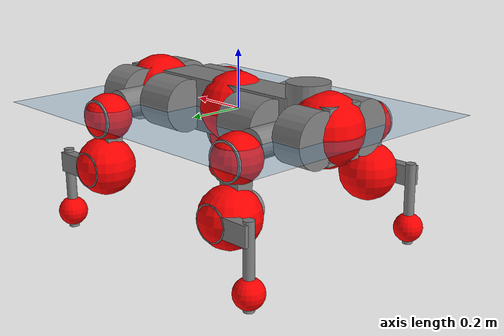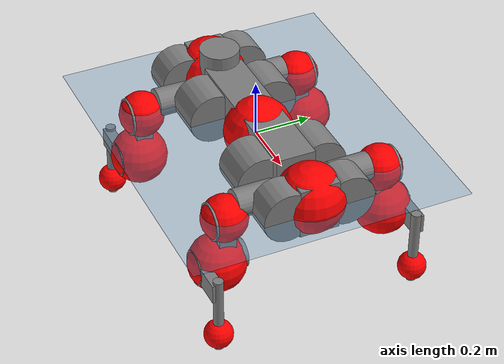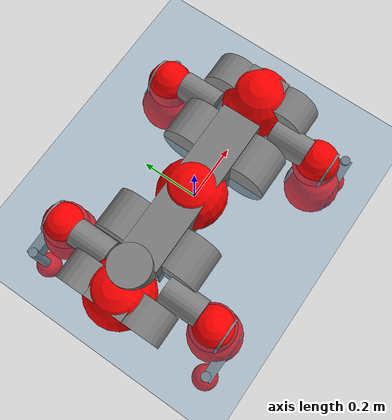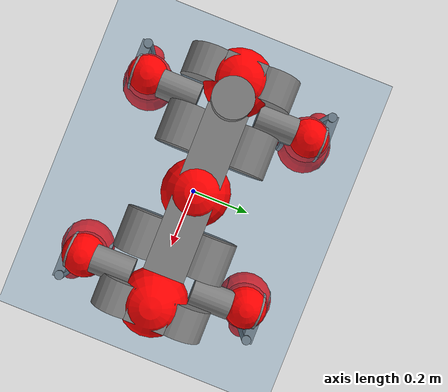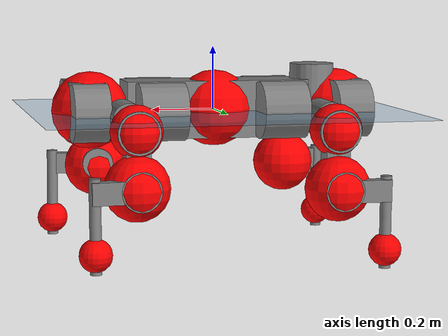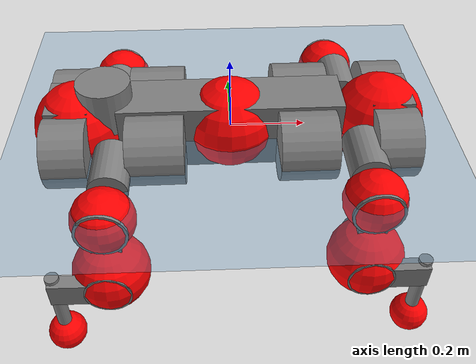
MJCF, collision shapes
<mujoco model="anymal_c">
  <compiler angle="radian" assetdir="assets" balanceinertia="true" inertiafromgeom="false"/>

  <option timestep="0.005" density="1.2" viscosity="2e-05"/>

  <size nkey="1"/>

  <visual>
    <quality shadowsize="8192"/>
    <map shadowclip="0.5"/>
  </visual>

  <default>
    <default class="/">
      <material specular="0" shininess="0.25"/>
      <geom contype="0" conaffinity="0" group="1" solref="-1000 -80"/>
      <site size="0.01 0.005 0.005" group="5"/>
      <general forcelimited="true" forcerange="-80 80" biastype="affine" gainprm="80" biasprm="0 -80 -2"/>
      <default class="anymal_c">
        <joint armature="0.01" damping="0.01" frictionloss="0.1"/>
        <default class="visual">
          <geom type="mesh" group="2"/>
          <default class="visual_zflip"/>
        </default>
        <default class="collision">
          <geom type="cylinder" group="3"/>
          <default class="foot">
            <geom size="0.03 0 0" type="sphere" condim="6" priority="1" friction="0.8 0.02 0.01" solimp="0.015 1 0.03"/>
          </default>
        </default>
      </default>
      <default class="reward_collision_sphere">
        <geom group="5" rgba="1 0 0 1"/>
      </default>
    </default>
  </default>

  <asset>
    <texture type="skybox" colorspace="auto" name="//unnamed_texture_0" builtin="gradient" rgb1="0.95 0.95 0.95" rgb2="0.95 0.95 0.95" width="100" height="600"/>
    <texture type="2d" colorspace="auto" name="texplane" builtin="checker" rgb1="0.345 0.575 0.748" rgb2="0.345 0.575 0.748" markrgb="1 1 1" width="512" height="512"/>
    <texture type="2d" colorspace="linear" name="base" file="base.png"/>
    <texture type="2d" colorspace="linear" name="top_shell" file="top_shell.png"/>
    <texture type="2d" colorspace="linear" name="bottom_shell" file="bottom_shell.png"/>
    <texture type="2d" colorspace="linear" name="remote" file="remote.png"/>
    <texture type="2d" colorspace="linear" name="hatch" file="hatch.png"/>
    <texture type="2d" colorspace="linear" name="handle" file="handle.png"/>
    <texture type="2d" colorspace="linear" name="face" file="face.png"/>
    <texture type="2d" colorspace="linear" name="battery" file="battery.png"/>
    <texture type="2d" colorspace="linear" name="lidar_cage" file="lidar_cage.png"/>
    <texture type="2d" colorspace="linear" name="depth_camera" file="depth_camera.png"/>
    <texture type="2d" colorspace="linear" name="wide_angle_camera" file="wide_angle_camera.png"/>
    <texture type="2d" colorspace="linear" name="lidar" file="lidar.png"/>
    <texture type="2d" colorspace="linear" name="drive" file="drive.png"/>
    <texture type="2d" colorspace="linear" name="hip_l" file="hip_l.png"/>
    <texture type="2d" colorspace="linear" name="shank_l" file="shank_l.png"/>
    <texture type="2d" colorspace="linear" name="foot" file="foot.png"/>
    <texture type="2d" colorspace="linear" name="thigh" file="thigh.png"/>
    <texture type="2d" colorspace="linear" name="shank_r" file="shank_r.png"/>
    <texture type="2d" colorspace="linear" name="hip_r" file="hip_r.png"/>
    <material name="MatPlane" class="/" texture="texplane" texuniform="true" texrepeat="2 2" specular="0.9" shininess="0.5"/>
    <material name="black_plastic" class="/" rgba="0.007 0.007 0.007 1"/>
    <material name="green" class="/" rgba="0.052 0.178 0.033 1"/>
    <material name="red" class="/" rgba="0.178 0.006 0.005 1"/>
    <material name="yellow" class="/" rgba="0.178 0.119 0.006 1"/>
    <material name="lwl" class="/" rgba="0.8 0.8 0.8 1"/>
    <material name="base" class="/" texture="base"/>
    <material name="top_shell" class="/" texture="top_shell"/>
    <material name="bottom_shell" class="/" texture="bottom_shell"/>
    <material name="hip_l" class="/" texture="hip_l"/>
    <material name="thigh" class="/" texture="thigh"/>
    <material name="shank_l" class="/" texture="shank_l"/>
    <material name="foot" class="/" texture="foot"/>
    <material name="hip_r" class="/" texture="hip_r"/>
    <material name="shank" class="/" texture="shank_r"/>
    <material name="hatch" class="/" texture="hatch"/>
    <material name="remote" class="/" texture="remote"/>
    <material name="handle" class="/" texture="handle"/>
    <material name="face" class="/" texture="face"/>
    <material name="depth_camera" class="/" texture="depth_camera"/>
    <material name="wide_angle_camera" class="/" texture="wide_angle_camera"/>
    <material name="battery" class="/" texture="battery"/>
    <material name="lidar_cage" class="/" texture="lidar_cage"/>
    <material name="lidar" class="/" texture="lidar"/>
    <material name="drive" class="/" texture="drive"/>
    <mesh name="base_0" class="/" file="base_0.obj"/>
    <mesh name="base_1" class="/" file="base_1.obj"/>
    <mesh name="base_2" class="/" file="base_2.obj"/>
    <mesh name="base_3" class="/" file="base_3.obj"/>
    <mesh name="base_4" class="/" file="base_4.obj"/>
    <mesh name="base_5" class="/" file="base_5.obj"/>
    <mesh name="top_shell" class="/" file="top_shell.obj"/>
    <mesh name="bottom_shell" class="/" file="bottom_shell.obj"/>
    <mesh name="remote" class="/" file="remote.obj"/>
    <mesh name="handle" class="/" file="handle.obj"/>
    <mesh name="face" class="/" file="face.obj"/>
    <mesh name="wide_angle_camera" class="/" file="wide_angle_camera.obj"/>
    <mesh name="depth_camera" class="/" file="depth_camera.obj"/>
    <mesh name="battery" class="/" file="battery.obj"/>
    <mesh name="lidar_cage" class="/" file="lidar_cage.obj"/>
    <mesh name="lidar" class="/" file="lidar.obj"/>
    <mesh name="drive" class="/" file="drive.obj"/>
    <mesh name="hip_l" class="/" file="hip_l.obj"/>
    <mesh name="thigh" class="/" file="thigh.obj"/>
    <mesh name="shank_l" class="/" file="shank_l.obj"/>
    <mesh name="foot" class="/" file="foot.obj"/>
    <mesh name="hip_r" class="/" file="hip_r.obj"/>
    <mesh name="hatch" class="/" file="hatch.obj"/>
    <mesh name="shank_r" class="/" file="shank_r.obj"/>
  </asset>

  <worldbody>
    <geom name="floor" class="/" size="100 100 0.125" type="plane" group="0" material="MatPlane"/>
    <light name="toplight_shadow" class="/" pos="0 0 5" dir="0.0990148 0.0990148 -0.990148" type="directional" ambient="0.04 0.04 0.04" diffuse="0.55 0.55 0.55" specular="0.12 0.12 0.12"/>
    <light name="toplight_fill" class="/" pos="0 0 5" dir="0.0990148 0.0990148 -0.990148" type="directional" castshadow="false" ambient="0.04 0.04 0.04" diffuse="0.3 0.3 0.3" specular="0.08 0.08 0.08"/>
    <body name="trunk" childclass="anymal_c" pos="-0.000263478 0.00961262 0.00510487" quat="0.999988 -0.00365217 -0.00112098 0.00296688">
      <inertial pos="0.0104642 0.0145624 0.0189144" quat="0.514552 0.497862 0.46688 0.51903" mass="20.4385" diaginertia="0.511022 6.55404 0.0153805"/>
      <joint name="//unnamed_joint_0" type="free" armature="0" damping="0" frictionloss="0"/>
      <geom name="//unnamed_geom_1" class="visual" material="green" mesh="base_0"/>
      <geom name="//unnamed_geom_2" class="visual" material="yellow" mesh="base_1"/>
      <geom name="//unnamed_geom_3" class="visual" material="red" mesh="base_2"/>
      <geom name="//unnamed_geom_4" class="visual" material="black_plastic" mesh="base_3"/>
      <geom name="//unnamed_geom_5" class="visual" material="lwl" mesh="base_4"/>
      <geom name="//unnamed_geom_6" class="visual" material="base" mesh="base_5"/>
      <geom name="trunk_1" class="collision" size="0.294315 0.0710416 0.0913392" type="box"/>
      <geom name="trunk_2" class="collision" size="0.0913392 0.0735788" pos="0.194638 0.10933 0" quat="0.707107 0 0.707107 0"/>
      <geom name="trunk_3" class="collision" size="0.0913392 0.0735788" pos="-0.194638 0.10933 0" quat="0.707107 0 0.707107 0"/>
      <geom name="trunk_4" class="collision" size="0.0913392 0.0735788" pos="0.194638 -0.10933 0" quat="0.707107 0 0.707107 0"/>
      <geom name="trunk_5" class="collision" size="0.0913392 0.0735788" pos="-0.194638 -0.10933 0" quat="0.707107 0 0.707107 0"/>
      <geom name="//unnamed_geom_12" class="visual" material="top_shell" mesh="top_shell"/>
      <geom name="//unnamed_geom_13" class="visual" material="bottom_shell" mesh="bottom_shell"/>
      <geom name="//unnamed_geom_14" class="visual" material="remote" mesh="remote"/>
      <geom name="//unnamed_geom_15" class="visual" material="handle" mesh="handle"/>
      <geom name="//unnamed_geom_16" class="visual" pos="0.37093 0 0" quat="1 0 0 0" material="face" mesh="face"/>
      <geom name="trunk_6" class="collision" size="0.0558184 0.0710416 0.0913392" pos="0.420149 0 0" type="box"/>
      <geom name="//unnamed_geom_18" class="collision" size="0.0913392 0.0558184" pos="0.420149 0.10933 0" quat="0.707107 0 0.707107 0"/>
      <geom name="//unnamed_geom_19" class="collision" size="0.0913392 0.0558184" pos="0.420149 -0.10933 0" quat="0.707107 0 0.707107 0"/>
      <geom name="//unnamed_geom_20" class="visual" pos="0.413111 0 -0.0148335" quat="0.965926 0 0.258819 0" material="depth_camera" mesh="depth_camera"/>
      <geom name="//unnamed_geom_21" class="visual" pos="0.459076 0 0.00880083" material="wide_angle_camera" mesh="wide_angle_camera"/>
      <geom name="//unnamed_geom_22" class="visual_zflip" pos="-0.37093 0 0" quat="0 0 0 1" material="face" mesh="face"/>
      <geom name="trunk_7" class="collision" size="0.0558184 0.0710416 0.0913392" pos="-0.420149 0 0" quat="0 0 0 1" type="box"/>
      <geom name="//unnamed_geom_24" class="collision" size="0.0913392 0.0558184" pos="-0.420149 -0.10933 0" quat="0 -0.707107 0 0.707107"/>
      <geom name="//unnamed_geom_25" class="collision" size="0.0913392 0.0558184" pos="-0.420149 0.10933 0" quat="0 -0.707107 0 0.707107"/>
      <geom name="//unnamed_geom_26" class="visual" pos="-0.413111 0 -0.0148335" quat="0 -0.258819 0 0.965926" material="depth_camera" mesh="depth_camera"/>
      <geom name="//unnamed_geom_27" class="visual_zflip" pos="-0.459076 0 0.00880083" quat="0 0 0 1" material="wide_angle_camera" mesh="wide_angle_camera"/>
      <geom name="//unnamed_geom_28" class="visual" material="battery" mesh="battery"/>
      <geom name="//unnamed_geom_29" class="visual" pos="0 0.128159 0.0194115" quat="0.683013 -0.183013 0.183013 0.683013" material="depth_camera" mesh="depth_camera"/>
      <geom name="//unnamed_geom_30" class="visual" pos="0 -0.128159 0.0194115" quat="0.683013 0.183013 0.183013 -0.683013" material="depth_camera" mesh="depth_camera"/>
      <geom name="//unnamed_geom_31" class="visual" pos="-0.325738 0 0.0432105" quat="1 0 0 0" material="lidar_cage" mesh="lidar_cage"/>
      <geom name="trunk_8" class="collision" size="0.0710416 0.0608928" pos="-0.325738 0 0.0784844"/>
      <geom name="//unnamed_geom_33" class="visual" pos="-0.325738 0.000262034 0.0835991" quat="0.707107 0 0 -0.707107" material="lidar" mesh="lidar"/>
      <geom name="//unnamed_geom_34" class="visual" pos="0.268376 0.162087 1.68009e-08" quat="0.258819 0.965926 0 0" material="drive" mesh="drive"/>
      <geom name="//unnamed_geom_35" class="visual" pos="0.268376 -0.162087 -1.68009e-08" quat="0.258819 -0.965926 0 0" material="drive" mesh="drive"/>
      <geom name="//unnamed_geom_36" class="visual" pos="-0.268376 0.162087 -1.68009e-08" quat="0 0 0.965926 -0.258819" material="drive" mesh="drive"/>
      <geom name="//unnamed_geom_37" class="visual" pos="-0.268376 -0.162087 1.68009e-08" quat="0 0 -0.965926 -0.258819" material="drive" mesh="drive"/>
      <geom name="//unnamed_geom_38" class="visual" pos="0.103807 0 0.0429166" quat="1 0 0 0" material="hatch" mesh="hatch"/>
      <geom name="//unnamed_geom_39" class="reward_collision_sphere" size="0.121786"/>
      <geom name="//unnamed_geom_40" class="reward_collision_sphere" size="0.121786" pos="0.402699 0 0"/>
      <geom name="//unnamed_geom_41" class="reward_collision_sphere" size="0.121786" pos="-0.402699 0 0"/>
      <site name="imu" pos="0.231461 0.00852705 0.0227897" size="0.0101488"/>
      <camera name="track" pos="0 -3.12371 0" quat="0.707107 0.707107 0 0" mode="trackcom"/>
      <camera name="ego_camera" pos="0.402699 0 -0.0235159" quat="-0.5 -0.5 0.5 0.5"/>
      <body name="LF_HIP" pos="0.266888 0.163505 -0.00167357" quat="0.25861 0.965982 0.000117881 -7.37901e-05">
        <inertial pos="0.0509749 -0.0120759 -0.00437521" quat="-0.0648052 0.709668 -0.0902515 0.69572" mass="2.77334" diaginertia="0.00325372 0.047539 0.000222608"/>
        <joint name="LF_HAA" pos="0 0 0" axis="0.999616 -0.00310991 0.0275515" range="-0.562121 0.548536" armature="0.0112538" damping="0.0071157" frictionloss="0.0984867"/>
        <geom name="//unnamed_geom_42" class="visual" pos="0 0.000988319 -0.000162331" quat="0.258819 -0.965926 0 0" material="hip_l" mesh="hip_l"/>
        <geom name="//unnamed_geom_43" class="visual" pos="0.0536036 -0.0733879 -0.0351666" quat="0.183013 -0.683013 0.683013 0.183013" material="drive" mesh="drive"/>
        <geom name="//unnamed_geom_44" class="collision" size="0.050744 0.0710416" pos="0.0536037 -0.0186795 -0.00405944" quat="-0.353553 -0.612372 0.612372 -0.353553"/>
        <body name="LF_THIGH" pos="0.0419734 -0.121273 -0.0292979" quat="0.184246 -0.681318 0.686081 0.176498">
          <inertial pos="0.0274523 -0.0149621 -0.141427" quat="0.990454 0.0160568 -0.0855865 0.106859" mass="2.91382" diaginertia="0.0202607 0.229317 0.000293481"/>
          <joint name="LF_HFE" pos="0 0 0" axis="0.998756 0.00366893 -0.0497269" range="-2.94354 3.41136" armature="0.00256689" damping="0" frictionloss="0.143339"/>
          <geom name="//unnamed_geom_45" class="visual" pos="-0.0132701 -2.09105e-05 0" quat="0.707107 0 0 -0.707107" material="thigh" mesh="thigh"/>
          <geom name="//unnamed_geom_46" class="collision" size="0.0659672 0.0405952" pos="0.0357954 0 0" quat="0.5 0.5 -0.5 -0.5"/>
          <geom name="//unnamed_geom_47" class="collision" size="0.038058 0.0304464 0.143417" pos="0.0268466 0 -0.0830782" quat="0.707107 0 0 -0.707107" type="box"/>
          <geom name="//unnamed_geom_48" class="visual" pos="0.089757 0 -0.167551" quat="1 0 0 0" material="drive" mesh="drive"/>
          <geom name="//unnamed_geom_49" class="collision" size="0.050744 0.0710416" pos="0.027115 0 -0.167551" quat="0.707107 0 0.707107 0"/>
          <geom name="//unnamed_geom_50" class="reward_collision_sphere" size="0.0811904" pos="0.0223721 0 0"/>
          <body name="LF_SHANK" pos="0.0862233 -0.00360297 -0.168456" quat="1 0.000252825 -0.000458622 -0.000180493">
            <inertial pos="0.0176694 -0.0865658 -0.0359791" quat="0.993426 -0.114323 0.00534661 0.0026205" mass="0.637765" diaginertia="0.00658254 0.0794932 8.95011e-05"/>
            <joint name="LF_KFE" pos="0 0 0" axis="0.999998 -0.000404496 0.00183105" range="-3.44223 2.91406" armature="0.0146864" damping="0.0708253" frictionloss="0.0743067"/>
            <geom name="//unnamed_geom_51" class="visual" pos="-0.00432708 -0.0230722 0" quat="0.707107 0 0 -0.707107" material="shank_l" mesh="shank_l"/>
            <geom name="LF_kfe_act" class="collision" size="0.0608928 0.0202976" pos="0.0178977 0 0" quat="0.5 0.5 -0.5 -0.5"/>
            <geom name="//unnamed_geom_53" class="collision" size="0.0583546 0.0342522 0.0192827" pos="0.0178977 -0.0898051 0" quat="0.5 0.5 -0.5 -0.5" type="box"/>
            <geom name="//unnamed_geom_54" class="visual" pos="0.0116793 -0.1448 -0.198692" quat="0.382683 0 0 -0.92388" material="foot" mesh="foot"/>
            <geom name="LF_calf" class="collision" size="0.0177604 0.143354" pos="0.0116783 -0.137365 -0.099346" quat="0.707107 0 0 -0.707107"/>
            <geom name="LF_foot" class="foot" size="0.0347042" pos="0.0116783 -0.137365 -0.185464" quat="0.707107 0 0 -0.707107"/>
            <geom name="//unnamed_geom_57" class="reward_collision_sphere" size="0.101488" pos="-0.0447443 0 0"/>
            <geom name="//unnamed_geom_58" class="reward_collision_sphere" size="0.050744" pos="0.0116783 -0.137365 -0.185464"/>
            <site name="LF_foot" class="foot" pos="0.0116783 -0.137365 -0.185464" quat="0.707107 0 0 -0.707107" size="0.0101488"/>
          </body>
        </body>
      </body>
      <body name="RF_HIP" pos="0.283263 -0.155397 0.0107502" quat="0.260103 -0.96558 -0.000609965 -0.00119666">
        <inertial pos="0.0532992 0.0176816 0.00189914" quat="0.153251 0.714523 0.0879371 0.676933" mass="3.13137" diaginertia="0.00379376 0.0457684 0.000215111"/>
        <joint name="RF_HAA" pos="0 0 0" axis="0.999146 -0.020597 -0.0358123" stiffness="0.0766947" range="-0.524223 0.474562" armature="0.0132872" damping="0.011853" frictionloss="0.0775274"/>
        <geom name="//unnamed_geom_59" class="visual" pos="0 -0.000988311 -0.00016233" quat="0.258819 0.965926 0 0" material="hip_r" mesh="hip_r"/>
        <geom name="//unnamed_geom_60" class="visual" pos="0.0536037 0.0733879 -0.0351666" quat="0.183013 0.683013 0.683013 -0.183013" material="drive" mesh="drive"/>
        <geom name="//unnamed_geom_61" class="collision" size="0.050744 0.0710416" pos="0.0536037 0.0186795 -0.00405944" quat="-0.353553 0.612372 0.612372 0.353553"/>
        <body name="RF_THIGH" pos="0.0600135 0.113244 -0.0119302" quat="0.183293 0.682898 0.683196 -0.182473">
          <inertial pos="0.0200118 0.00934597 -0.157948" quat="0.992298 -0.00782286 -0.0598535 0.108171" mass="2.97549" diaginertia="0.0191862 0.275573 0.000291203"/>
          <joint name="RF_HFE" pos="0 0 0" axis="0.999976 -0.00296674 0.00627218" range="-3.13618 3.02741" armature="0.0160897" damping="0" frictionloss="0.147189"/>
          <geom name="//unnamed_geom_62" class="visual" pos="-0.0132701 -2.09105e-05 0" quat="0.707107 0 0 -0.707107" material="thigh" mesh="thigh"/>
          <geom name="//unnamed_geom_63" class="collision" size="0.0659672 0.0405952" pos="0.0357954 0 0" quat="0.5 0.5 0.5 0.5"/>
          <geom name="//unnamed_geom_64" class="collision" size="0.038058 0.0304464 0.143417" pos="0.0268466 0 -0.0830782" quat="0.707107 0 0 0.707107" type="box"/>
          <geom name="//unnamed_geom_65" class="visual" pos="0.089757 0 -0.167551" quat="1 0 0 0" material="drive" mesh="drive"/>
          <geom name="//unnamed_geom_66" class="collision" size="0.050744 0.0710416" pos="0.027115 0 -0.167551" quat="0.707107 0 0.707107 0"/>
          <geom name="//unnamed_geom_67" class="reward_collision_sphere" size="0.0811904" pos="0.0223721 0 0"/>
          <body name="RF_SHANK" pos="0.0933666 -0.0038956 -0.180466" quat="0.999998 -0.000387748 -0.00178612 -0.000324814">
            <inertial pos="0.013935 0.0862242 -0.0485562" quat="0.99371 0.107245 0.0286975 0.0146952" mass="0.499434" diaginertia="0.00511097 0.0610296 7.0995e-05"/>
            <joint name="RF_KFE" pos="0 0 0" axis="0.999968 -0.00446298 0.00658852" range="-3.24915 3.04958" armature="0.0113651" damping="0.0800775" frictionloss="0.131313"/>
            <geom name="//unnamed_geom_68" class="visual" pos="-0.00432705 0.0230722 0" quat="0.707107 0 0 0.707107" material="shank" mesh="shank_r"/>
            <geom name="RF_kfe_act" class="collision" size="0.0608928 0.0202976" pos="0.0178977 0 0" quat="0.5 0.5 0.5 0.5"/>
            <geom name="//unnamed_geom_70" class="collision" size="0.0583546 0.0342522 0.0192827" pos="0.0178977 0.0898051 0" quat="0.5 0.5 0.5 0.5" type="box"/>
            <geom name="//unnamed_geom_71" class="visual" pos="0.0116772 0.1448 -0.198692" quat="0.382683 0 0 0.92388" material="foot" mesh="foot"/>
            <geom name="RF_calf" class="collision" size="0.0177604 0.143354" pos="0.0116783 0.137365 -0.099346" quat="0.707107 0 0 0.707107"/>
            <geom name="RF_foot" class="foot" size="0.047407" pos="0.0116783 0.137365 -0.185464" quat="0.707107 0 0 0.707107"/>
            <geom name="//unnamed_geom_74" class="reward_collision_sphere" size="0.101488" pos="-0.0447443 0 0"/>
            <geom name="//unnamed_geom_75" class="reward_collision_sphere" size="0.050744" pos="0.0116783 0.137365 -0.185464"/>
            <site name="RF_foot" class="foot" pos="0.0116783 0.137365 -0.185464" quat="0.707107 0 0 0.707107" size="0.0101488"/>
          </body>
        </body>
      </body>
      <body name="LH_HIP" pos="-0.265921 0.154926 -0.0107274" quat="3.37989e-07 -1.73934e-05 0.965881 -0.258988">
        <inertial pos="0.0474016 0.027591 -0.0137648" quat="0.130428 0.685917 0.110173 0.707367" mass="3.72829" diaginertia="0.00377616 0.0538916 0.000222916"/>
        <joint name="LH_HAA" pos="0 0 0" axis="0.999476 0.00403803 0.0321202" range="-0.732265 0.833634" armature="0.0120087" damping="0.0085552" frictionloss="0.0459295"/>
        <geom name="//unnamed_geom_76" class="visual" pos="0 -0.000988311 -0.00016233" quat="-0.258819 -0.965926 0 0" material="hip_r" mesh="hip_r"/>
        <geom name="//unnamed_geom_77" class="visual" pos="0.0536037 0.0733879 -0.0351666" quat="0.183013 0.683013 0.683013 -0.183013" material="drive" mesh="drive"/>
        <geom name="//unnamed_geom_78" class="collision" size="0.050744 0.0710416" pos="0.0536037 0.0186795 -0.00405944" quat="-0.353553 0.612372 0.612372 0.353553"/>
        <body name="LH_THIGH" pos="0.051098 0.120828 -0.0288708" quat="0.185578 0.684791 0.682122 -0.177008">
          <inertial pos="0.0272491 -0.0157103 -0.149986" quat="0.987436 -0.0462628 -0.114339 0.098773" mass="3.74125" diaginertia="0.0188719 0.245457 0.000243749"/>
          <joint name="LH_HFE" pos="0 0 0" axis="0.997204 0.012231 0.0737163" stiffness="0.00809695" range="-3.09785 3.14849" armature="0.0052893" damping="0" frictionloss="0.143518"/>
          <geom name="//unnamed_geom_79" class="visual" pos="-0.0132701 -2.09105e-05 0" quat="0.707107 0 0 -0.707107" material="thigh" mesh="thigh"/>
          <geom name="//unnamed_geom_80" class="collision" size="0.0659672 0.0405952" pos="0.0357954 0 0" quat="0.5 0.5 -0.5 -0.5"/>
          <geom name="//unnamed_geom_81" class="collision" size="0.038058 0.0304464 0.143417" pos="0.0268466 0 -0.0830782" quat="0.707107 0 0 -0.707107" type="box"/>
          <geom name="//unnamed_geom_82" class="visual" pos="0.089757 0 -0.167551" quat="1 0 0 0" material="drive" mesh="drive"/>
          <geom name="//unnamed_geom_83" class="collision" size="0.050744 0.0710416" pos="0.027115 0 -0.167551" quat="0.707107 0 0.707107 0"/>
          <geom name="//unnamed_geom_84" class="reward_collision_sphere" size="0.0811904" pos="0.0223721 0 0"/>
          <body name="LH_SHANK" pos="0.0965547 0.000285684 -0.177654" quat="0.999992 0.00364886 -0.00159518 -0.000323337">
            <inertial pos="0.00534311 0.0838815 -0.0459945" quat="0.99228 0.121154 -0.00161077 0.0264365" mass="0.630238" diaginertia="0.00634183 0.0936021 8.6267e-05"/>
            <joint name="LH_KFE" pos="0 0 0" axis="0.999968 0.000892521 0.00791246" range="-3.43313 3.15369" armature="0.00247006" damping="0" frictionloss="0.148565"/>
            <geom name="//unnamed_geom_85" class="visual" pos="-0.00432705 0.0230722 0" quat="-0.707107 0 0 -0.707107" material="shank" mesh="shank_r"/>
            <geom name="LH_kfe_act" class="collision" size="0.0608928 0.0202976" pos="0.0178977 0 0" quat="0.5 0.5 -0.5 -0.5"/>
            <geom name="//unnamed_geom_87" class="collision" size="0.0583546 0.0342522 0.0192827" pos="0.0178977 0.0898051 0" quat="0.5 0.5 -0.5 -0.5" type="box"/>
            <geom name="//unnamed_geom_88" class="visual" pos="0.0116772 0.1448 -0.198692" quat="-0.382683 0 0 -0.92388" material="foot" mesh="foot"/>
            <geom name="LH_calf" class="collision" size="0.0177604 0.143354" pos="0.0116783 0.137365 -0.099346" quat="0.707107 0 0 -0.707107"/>
            <geom name="LH_foot" class="foot" size="0.0322726" pos="0.0116783 0.137365 -0.185464" quat="0.707107 0 0 -0.707107"/>
            <geom name="//unnamed_geom_91" class="reward_collision_sphere" size="0.101488" pos="-0.0447443 0 0"/>
            <geom name="//unnamed_geom_92" class="reward_collision_sphere" size="0.050744" pos="0.0116783 0.137365 -0.185464"/>
            <site name="LH_foot" class="foot" pos="0.0116783 0.137365 -0.185464" quat="0.707107 0 0 -0.707107" size="0.0101488"/>
          </body>
        </body>
      </body>
      <body name="RH_HIP" pos="-0.253761 -0.163153 -0.00435329" quat="0.00272148 -0.00723821 -0.966098 -0.258058">
        <inertial pos="0.0497728 -0.0188314 -0.00265189" quat="-0.130195 0.709367 -0.136357 0.679157" mass="3.14034" diaginertia="0.0037092 0.0468593 0.000203226"/>
        <joint name="RH_HAA" pos="0 0 0" axis="0.999981 -0.00268312 -0.0055031" range="-0.65075 0.294611" armature="0.00338138" damping="0.0244378" frictionloss="0.0562541"/>
        <geom name="//unnamed_geom_93" class="visual" pos="0 0.000988319 -0.000162331" quat="-0.258819 0.965926 0 0" material="hip_l" mesh="hip_l"/>
        <geom name="//unnamed_geom_94" class="visual" pos="0.0536036 -0.0733879 -0.0351666" quat="-0.183013 0.683013 -0.683013 -0.183013" material="drive" mesh="drive"/>
        <geom name="//unnamed_geom_95" class="collision" size="0.050744 0.0710416" pos="0.0536037 -0.0186795 -0.00405944" quat="0.353553 0.612372 -0.612372 0.353553"/>
        <body name="RH_THIGH" pos="0.0635069 -0.124424 -0.0192298" quat="-0.186123 0.682841 -0.682367 -0.182925">
          <inertial pos="0.0284181 0.0107863 -0.143021" quat="0.992539 0.00416796 -0.0900154 0.0821311" mass="2.86276" diaginertia="0.0169052 0.280192 0.000312449"/>
          <joint name="RH_HFE" pos="0 0 0" axis="0.999968 -0.00150904 -0.00785065" range="-3.15435 2.83556" armature="0.0175248" damping="0" frictionloss="0.107595"/>
          <geom name="//unnamed_geom_96" class="visual" pos="-0.0132701 -2.09105e-05 0" quat="0.707107 0 0 -0.707107" material="thigh" mesh="thigh"/>
          <geom name="//unnamed_geom_97" class="collision" size="0.0659672 0.0405952" pos="0.0357954 0 0" quat="0.5 0.5 0.5 0.5"/>
          <geom name="//unnamed_geom_98" class="collision" size="0.038058 0.0304464 0.143417" pos="0.0268466 0 -0.0830782" quat="0.707107 0 0 0.707107" type="box"/>
          <geom name="//unnamed_geom_99" class="visual" pos="0.089757 0 -0.167551" quat="1 0 0 0" material="drive" mesh="drive"/>
          <geom name="//unnamed_geom_100" class="collision" size="0.050744 0.0710416" pos="0.027115 0 -0.167551" quat="0.707107 0 0.707107 0"/>
          <geom name="//unnamed_geom_101" class="reward_collision_sphere" size="0.0811904" pos="0.0223721 0 0"/>
          <body name="RH_SHANK" pos="0.081252 -0.000731941 -0.174339" quat="1 0.000313142 0.000368073 -0.000721324">
            <inertial pos="0.0133277 -0.0980508 -0.0491777" quat="0.993299 -0.113702 0.000265367 -0.0207216" mass="0.548661" diaginertia="0.00555976 0.0789567 8.13482e-05"/>
            <joint name="RH_KFE" pos="0 0 0" axis="0.998511 -0.0544319 0.00371269" range="-3.39476 2.99239" armature="0.0118588" damping="0.0113247" frictionloss="0.0600766"/>
            <geom name="//unnamed_geom_102" class="visual" pos="-0.00432708 -0.0230722 0" quat="0.707107 0 0 -0.707107" material="shank_l" mesh="shank_l"/>
            <geom name="RH_kfe_act" class="collision" size="0.0608928 0.0202976" pos="0.0178977 0 0" quat="0.5 0.5 0.5 0.5"/>
            <geom name="//unnamed_geom_104" class="collision" size="0.0583546 0.0342522 0.0192827" pos="0.0178977 -0.0898051 0" quat="0.5 0.5 0.5 0.5" type="box"/>
            <geom name="//unnamed_geom_105" class="visual" pos="0.0116793 -0.1448 -0.198692" quat="0.382683 0 0 -0.92388" material="foot" mesh="foot"/>
            <geom name="RH_calf" class="collision" size="0.0177604 0.143354" pos="0.0116783 -0.137365 -0.099346" quat="0.707107 0 0 0.707107"/>
            <geom name="RH_foot" class="foot" size="0.0129319" pos="0.0116783 -0.137365 -0.185464" quat="0.707107 0 0 0.707107"/>
            <geom name="//unnamed_geom_108" class="reward_collision_sphere" size="0.101488" pos="-0.0447443 0 0"/>
            <geom name="//unnamed_geom_109" class="reward_collision_sphere" size="0.050744" pos="0.0116783 -0.137365 -0.185464"/>
            <site name="RH_foot" class="foot" pos="0.0116783 -0.137365 -0.185464" quat="0.707107 0 0 0.707107" size="0.0101488"/>
          </body>
        </body>
      </body>
    </body>
  </worldbody>

  <contact>
    <pair class="/" geom1="floor" geom2="LF_foot" name="//unnamed_contact_0"/>
    <pair class="/" geom1="floor" geom2="RF_foot" name="//unnamed_contact_1"/>
    <pair class="/" geom1="floor" geom2="LH_foot" name="//unnamed_contact_2"/>
    <pair class="/" geom1="floor" geom2="RH_foot" name="//unnamed_contact_3"/>
  </contact>

  <actuator>
    <general name="LF_HAA" class="/" joint="LF_HAA" forcerange="-59.4991 59.4991" gainprm="75.2773" biasprm="0 -75.2773 -1.98069"/>
    <general name="LF_HFE" class="/" joint="LF_HFE" forcerange="-83.5513 83.5513" gainprm="75.2773" biasprm="0 -75.2773 -1.98069"/>
    <general name="LF_KFE" class="/" joint="LF_KFE" forcerange="-79.3475 79.3475" gainprm="75.2773" biasprm="0 -75.2773 -1.98069"/>
    <general name="RF_HAA" class="/" joint="RF_HAA" forcerange="-104.628 104.628" gainprm="75.2773" biasprm="0 -75.2773 -1.98069"/>
    <general name="RF_HFE" class="/" joint="RF_HFE" forcerange="-83.1294 83.1294" gainprm="75.2773" biasprm="0 -75.2773 -1.98069"/>
    <general name="RF_KFE" class="/" joint="RF_KFE" forcerange="-113.074 113.074" gainprm="75.2773" biasprm="0 -75.2773 -1.98069"/>
    <general name="LH_HAA" class="/" joint="LH_HAA" forcerange="-97.478 97.478" gainprm="75.2773" biasprm="0 -75.2773 -1.98069"/>
    <general name="LH_HFE" class="/" joint="LH_HFE" forcerange="-82.7559 82.7559" gainprm="75.2773" biasprm="0 -75.2773 -1.98069"/>
    <general name="LH_KFE" class="/" joint="LH_KFE" forcerange="-67.3867 67.3867" gainprm="75.2773" biasprm="0 -75.2773 -1.98069"/>
    <general name="RH_HAA" class="/" joint="RH_HAA" forcerange="-103.556 103.556" gainprm="75.2773" biasprm="0 -75.2773 -1.98069"/>
    <general name="RH_HFE" class="/" joint="RH_HFE" forcerange="-62.9689 62.9689" gainprm="75.2773" biasprm="0 -75.2773 -1.98069"/>
    <general name="RH_KFE" class="/" joint="RH_KFE" forcerange="-41.5758 41.5758" gainprm="75.2773" biasprm="0 -75.2773 -1.98069"/>
  </actuator>

  <sensor>
    <gyro site="imu" name="imu_angular_velocity"/>
    <velocimeter site="imu" name="imu_linear_velocity"/>
    <framelinvel objtype="site" objname="LF_foot" name="LF_foot_global_linear_velocity"/>
    <framelinvel objtype="site" objname="RF_foot" name="RF_foot_global_linear_velocity"/>
    <framelinvel objtype="site" objname="LH_foot" name="LH_foot_global_linear_velocity"/>
    <framelinvel objtype="site" objname="RH_foot" name="RH_foot_global_linear_velocity"/>
  </sensor>

  <keyframe>
    <key name="home" qpos="0 0 0.55 1 0 0 0 0 0.4 -0.8 0 -0.4 0.8 0 -0.4 0.8 0 0.4 -0.8"/>
  </keyframe>
</mujoco>
